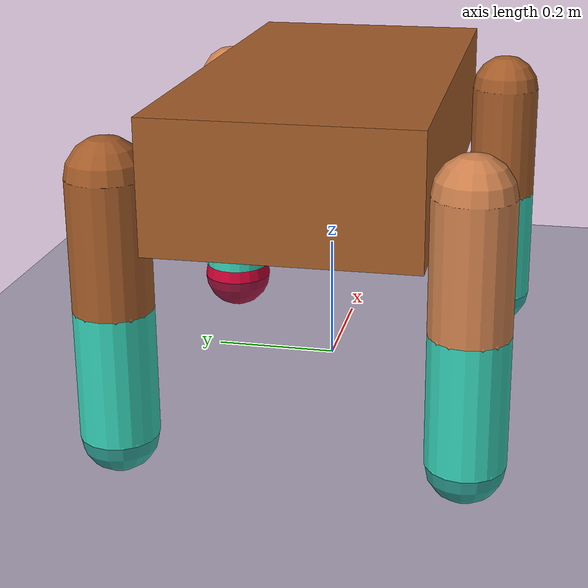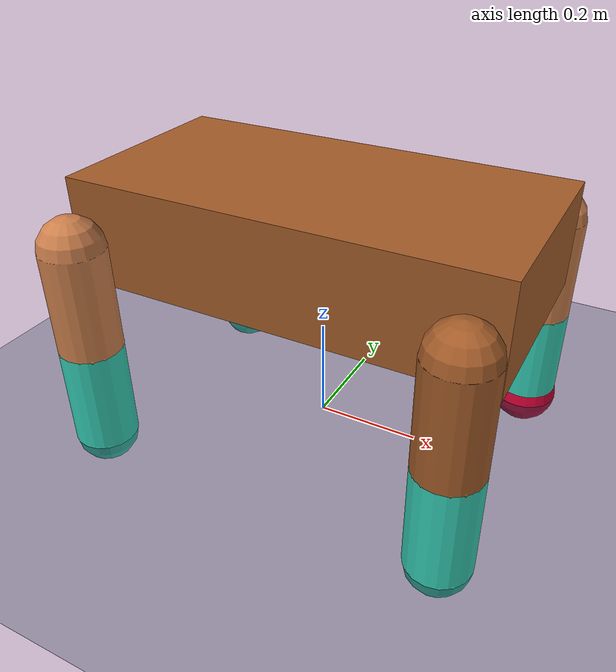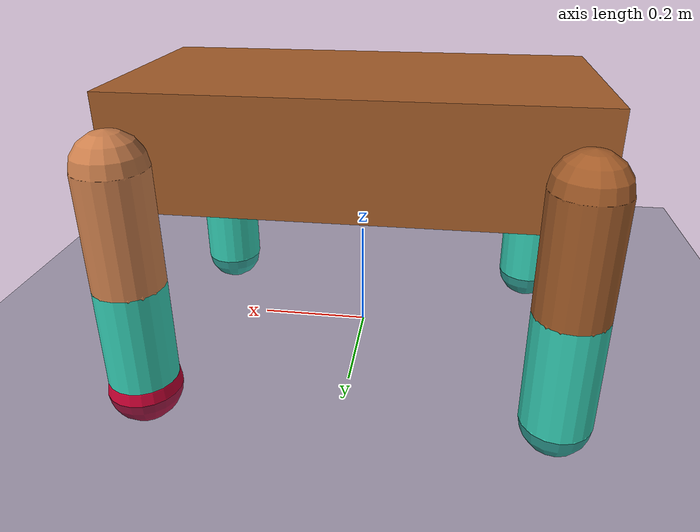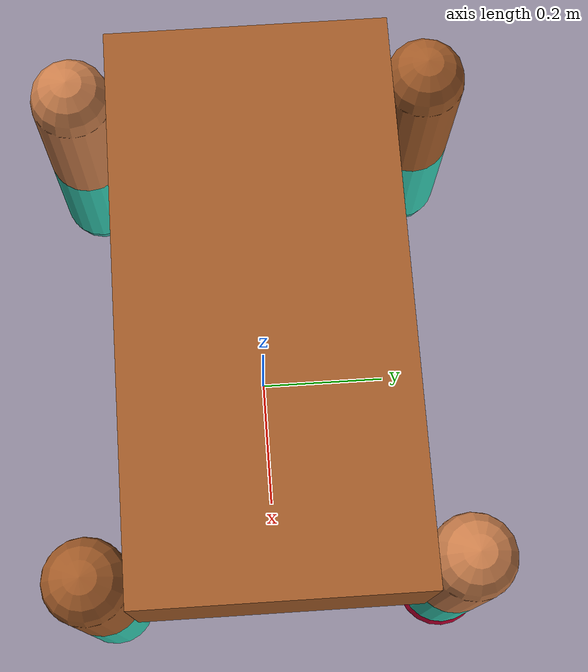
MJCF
<mujoco model="quad_world">
    <compiler inertiafromgeom="true" angle="degree"/>

    <default>
        <joint limited="true" damping="1" armature="0"/>
        <geom condim="3" material="matgeom"/>
	<motor ctrlrange="-.4 .4" ctrllimited="true" gear="40"/>
	<tendon stiffness="4000" damping="300"/> <!-- Default: Stiff = 4000 and damp = 300 -->
    </default>

    <option timestep="0.005" iterations="50" tolerance="1e-10" solver="Newton" jacobian="dense" cone="pyramidal"/>

    <size nconmax="320" njmax="1100" nstack="10000"/> <!-- default njmax=200 and nconmax = 50 -->

    <visual>
        <map force="0.1" zfar="30"/>
        <quality shadowsize="2048"/>
        <global offwidth="800" offheight="800"/>
    </visual>

    <asset>
        <texture type="skybox" builtin="gradient" rgb1="0.3 0.5 0.7" rgb2="0 0 0" width="512" height="512"/>

        <texture name="texplane" type="2d" builtin="checker" rgb1=".2 .3 .4" rgb2=".1 0.15 0.2" width="512" height="512" mark="cross" markrgb=".8 .8 .8"/>

        <texture name="texgeom" type="cube" builtin="flat" mark="cross" width="127" height="1278"
            rgb1="0.8 0.6 0.4" rgb2="0.8 0.6 0.4" markrgb="1 1 1" random="0.01"/>

        <material name="matplane" reflectance="0.3" texture="texplane" texrepeat="1 1" texuniform="true"/>

        <material name="matgeom" texture="texgeom" texuniform="true" rgba="0.8 0.6 .4 1"/>

		<!-- Using size="20 20 0.33 0.5" for example produces a pretty good rough terrain. -->
    </asset>

    <worldbody>
	   <!-- There's many different ways of changing the angle of the plane (euler, axisangle, quat, etc.).  -->
        <geom name="floor" pos="0 0 0" size="40 40 .2" type="plane" material="matplane" condim="3" axisangle="1 1 1 0"/>

	<!-- Example of sloped surface creation (CRUDE/ROUGH, better ways of creating sloped ground almost certainly exist). -->

        <light directional="false" diffuse=".2 .2 .2" specular="0 0 0" pos="0 0 5" dir="0 0 -1" castshadow="false"/>
        <light mode="targetbodycom" target="torso" directional="false" diffuse=".8 .8 .8" specular="0.3 0.3 0.3" pos="0 0 4.0" dir="0 0 -1"/>

	<!-- mujoco150 doesn't support hfield's in bodies, rather, they should be directly in the worldbody. Mujoco200 hfield commented out.  -->

	<!-- The hfield. The size specified here is ignored, instead the size defined in the hfield asset itself is used. -->

        <!-- Default hip range: range="-40 40" -->
	<body name="torso" pos="0 0 0.4">
        <freejoint name="root"/>
	<geom name="torso_geom" pos="0 0 0" size="0.4 0.2 0.1" type="box"/>
	<site name="gyroSensorSite" pos="0 0 0" size="0.005"/> <!-- Site for the gyroscope sensor. -->
        <body name="upper_front_left_leg" pos="0.35 0.26 0.00">
          <geom fromto="0.0 0.0 0.0 0.0 0.0 -0.2" name="upper_aux_1_geom" size="0.06" type="capsule" rgba    =".8 .5 .3 1"/>
	  <site name="s1_1" pos="0 0 -0.2" size="0.005"/> <!-- orginal: pos="0 0 1.5" -->
	      <joint axis = "0 1 0" name = "hip_1" pos= "0.0 0.0 0.0" range="-90 90" type="hinge"/>
	      <joint axis = "1 0 0" name = "hip_side_1" pos="0.0 0.0 0.0" range="-10 10" type ="hinge"/>
		  <body name="lower_front_left_leg" pos="0 0 -0.2">
		   <geom fromto="0.0 0.0 0.0 0.0 0.0 -0.2" name ="lower_aux_1_geom" size="0.06" type="capsule" rgba      =".2 .8 .7 1"/>
		   <site name="s1_2" pos="0 0 0" size="0.005"/> <!-- Original: pos ="0 0 1.5" -->
		   <joint type="slide" axis="0 0 1" limited="false"/>
		   <site name="touchSite1" pos="0 0 -0.2" type="sphere" size="0.064 0.064 0.064" rgba="0.8 0 0.2 1"/>
		  </body>
        </body>
        <body name="upper_front_right_leg" pos="0.35 -0.26 0.00">
            <geom fromto="0.0 0.0 0.0 0.0 0.0 -0.2" name="upper_aux_2_geom" size="0.06" type="capsule"/>
            <site name="s2_1" pos="0 0 -0.2" size="0.005"/>
		    <joint axis="0 1 0" name="hip_2" pos="0.0 0.0 0.0" range="-90 90" type="hinge"/>
		    <joint axis = "1 0 0" name = "hip_side_2" pos="0.0 0.0 0.0" range="-10 10" type ="hinge"/>
            <body name="lower_front_right_leg" pos="0 0 -0.2">
		      <geom fromto="0.0 0.0 0.0 0.0 0.0 -0.2" name ="lower_aux_2_geom" size="0.06" type="capsule" rgba      =".2 .8 .7 1"/>
		      <site name="s2_2" pos="0 0 0" size="0.005"/>
		      <joint type="slide" axis="0 0 1" limited="false"/>
		  </body>
        </body>
        <body name="upper_left_back_leg" pos="-0.35 0.26 0.00">
          <geom fromto="0.0 0.0 0.0 0.0 0.0 -0.2" name="upper_aux_3_geom" size="0.06" type="capsule"/>
		  <site name="s3_1" pos="0 0 -0.2" size="0.005"/>
	      <joint axis="0 1 0" name="hip_3" pos="0.0 0.0 0.0" range="-90 90" type="hinge"/>
	      <joint axis = "1 0 0" name = "hip_side_3" pos="0.0 0.0 0.0" range="-10 10" type ="hinge"/>
		  <body name="lower_left_back_leg" pos="0 0 -0.2">
		      <geom fromto="0.0 0.0 0.0 0.0 0.0 -0.2" name ="lower_aux_3_geom" size="0.06" type="capsule" rgba      =".2 .8 .7 1"/>
		      <site name="s3_2" pos="0 0 0" size="0.005"/>
		      <joint type="slide" axis="0 0 1" limited="false"/>
		  </body>
        </body>
        <body name="upper_right_back_leg" pos="-0.35 -0.26 0.00">
          <geom fromto="0.0 0.0 0.0 0.0 0.0 -0.2" name="upper_aux_4_geom" size="0.06" type="capsule" rgba    =".8 .5 .3 1"/>
		  <site name="s4_1" pos="0 0 -0.2" size="0.005"/>
	      <joint axis="0 1 0" name="hip_4" pos="0.0 0.0 0.0" range="-90 90" type="hinge"/>
	      <joint axis = "1 0 0" name = "hip_side_4" pos="0.0 0.0 0.0" range="-10 10" type ="hinge"/>
		  <body name="lower_right_back_leg" pos="0 0 -0.2">
		      <geom fromto="0.0 0.0 0.0 0.0 0.0 -0.2" name ="lower_aux_4_geom" size="0.06" type="capsule" rgba      =".2 .8 .7 1"/>
		      <site name="s4_2" pos="0 0 0" size="0.005"/>
		      <joint type="slide" axis="0 0 1" limited="false"/>
		  </body>
         </body>
      </body>

    </worldbody>

	<tendon>
		<spatial width = "0.02" name="tend1" rgba=".95 .3 .3 1" limited="true" range="0 1"> <!-- stiffness="x" written for all tendons, if no default specified. -->
            <site site="s1_1"/>
            <site site="s1_2"/>
      	</spatial>
		<spatial width = "0.02" name="tend2" rgba=".95 .3 .3 1" limited="true" range="0 1">
            <site site="s2_1"/>
            <site site="s2_2"/>
      	</spatial>
		<spatial width = "0.02" name="tend3" rgba=".95 .3 .3 1" limited="true" range="0 1">
            <site site="s3_1"/>
            <site site="s3_2"/>
      	</spatial>
		<spatial width = "0.02" name="tend4" rgba=".95 .3 .3 1" limited="true" range="0 1">
            <site site="s4_1"/>
            <site site="s4_2"/>
      	</spatial>
    </tendon>

    <actuator>
     <motor ctrllimited="true" ctrlrange="-5.0 5.0" joint="hip_4"/>
     <motor ctrllimited="true" ctrlrange="-5.0 5.0" joint="hip_1"/>
     <motor ctrllimited="true" ctrlrange="-5.0 5.0" joint="hip_2"/>
     <motor ctrllimited="true" ctrlrange="-5.0 5.0" joint="hip_3"/>
i    <motor ctrllimited="true" ctrlrange="-5.0 5.0" joint="hip_side_1"/>
     <motor ctrllimited="true" ctrlrange="-5.0 5.0" joint="hip_side_2"/>
     <motor ctrllimited="true" ctrlrange="-5.0 5.0" joint="hip_side_3"/>
     <motor ctrllimited="true" ctrlrange="-5.0 5.0" joint="hip_side_4"/>

     <motor ctrllimited="true" ctrlrange="-1.0 1.0" tendon="tend1" gear="500"/>
     <motor ctrllimited="true" ctrlrange="-1.0 1.0" tendon="tend2" gear="500"/>
     <motor ctrllimited="true" ctrlrange="-1.0 1.0" tendon="tend3" gear="500"/>
     <motor ctrllimited="true" ctrlrange="-1.0 1.0" tendon="tend4" gear="500"/>
    </actuator>

    <sensor>
	    <gyro site="gyroSensorSite"/>
	    <touch site="touchSite1"/>
    </sensor>

</mujoco>
